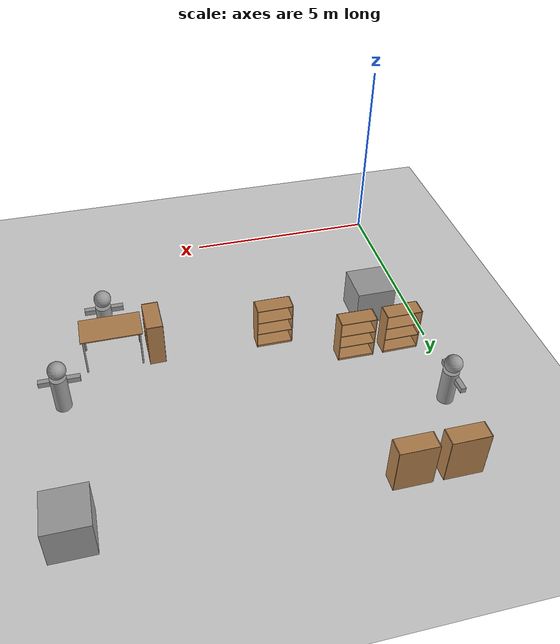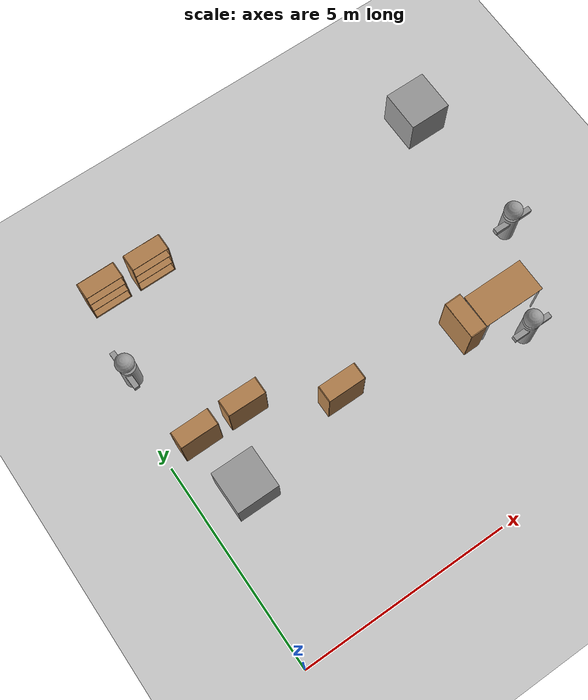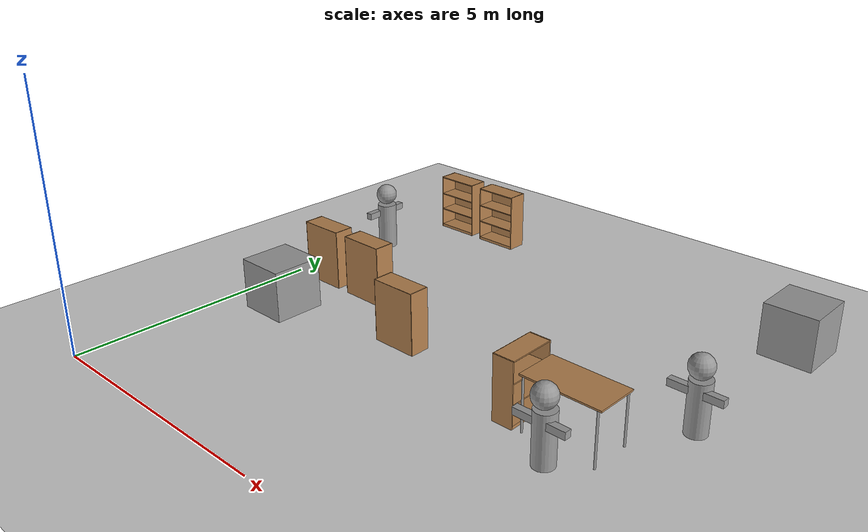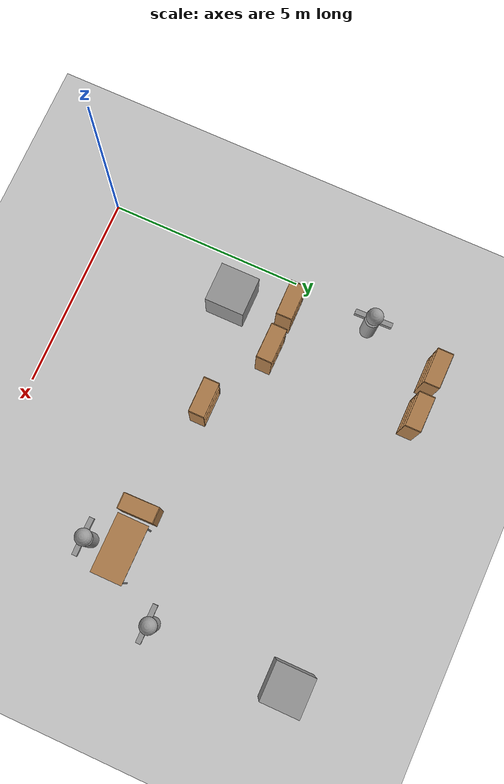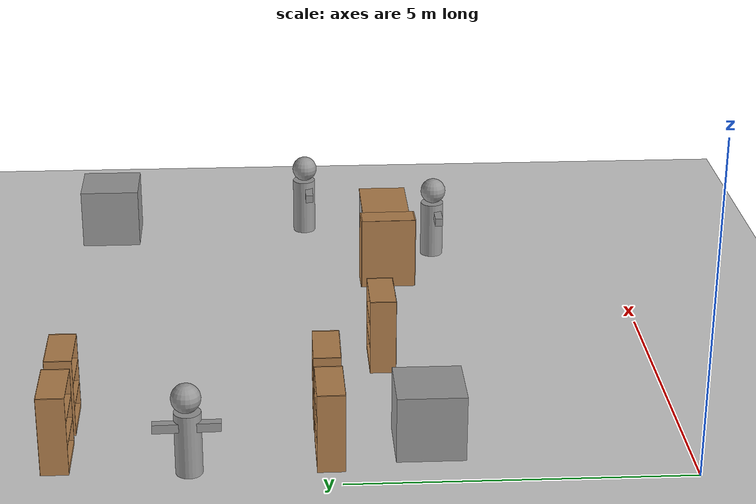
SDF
<sdf version="1.7">
 <world name="default">
  <model name="ground_plane">
   <static>1</static>
   <link name="link">
    <collision name="collision">
     <geometry><plane><normal>0 0 1</normal><size>100 100</size></plane></geometry>
     <surface><friction><ode><mu>100</mu><mu2>50</mu2></ode></friction></surface>
    </collision>
    <visual name="visual">
     <cast_shadows>0</cast_shadows>
     <geometry><plane><normal>0 0 1</normal><size>100 100</size></plane></geometry>
     <material>
      <script><uri>file://media/materials/scripts/gazebo.material</uri><name>Gazebo/Grey</name></script>
     </material>
    </visual>
   </link>
  </model>
  <model name="table">
   <static>1</static>
   <link name="link">
    <collision name="surface">
     <pose>0 0 1 0 -0 0</pose>
     <geometry><box><size>1.5 0.8 0.03</size></box></geometry>
     <surface><friction><ode><mu>0.6</mu><mu2>0.6</mu2></ode></friction></surface>
    </collision>
    <visual name="visual1">
     <pose>0 0 1 0 -0 0</pose>
     <geometry><box><size>1.5 0.8 0.03</size></box></geometry>
     <material>
      <script><uri>file://media/materials/scripts/gazebo.material</uri><name>Gazebo/Wood</name></script>
     </material>
    </visual>
    <collision name="front_left_leg">
     <pose>0.68 0.38 0.5 0 -0 0</pose>
     <geometry><cylinder><radius>0.02</radius><length>1</length></cylinder></geometry>
    </collision>
    <visual name="front_left_leg">
     <pose>0.68 0.38 0.5 0 -0 0</pose>
     <geometry><cylinder><radius>0.02</radius><length>1</length></cylinder></geometry>
     <material>
      <script><uri>file://media/materials/scripts/gazebo.material</uri><name>Gazebo/Grey</name></script>
     </material>
    </visual>
    <collision name="front_right_leg">
     <pose>0.68 -0.38 0.5 0 -0 0</pose>
     <geometry><cylinder><radius>0.02</radius><length>1</length></cylinder></geometry>
    </collision>
    <visual name="front_right_leg">
     <pose>0.68 -0.38 0.5 0 -0 0</pose>
     <geometry><cylinder><radius>0.02</radius><length>1</length></cylinder></geometry>
     <material>
      <script><uri>file://media/materials/scripts/gazebo.material</uri><name>Gazebo/Grey</name></script>
     </material>
    </visual>
    <collision name="back_right_leg">
     <pose>-0.68 -0.38 0.5 0 -0 0</pose>
     <geometry><cylinder><radius>0.02</radius><length>1</length></cylinder></geometry>
    </collision>
    <visual name="back_right_leg">
     <pose>-0.68 -0.38 0.5 0 -0 0</pose>
     <geometry><cylinder><radius>0.02</radius><length>1</length></cylinder></geometry>
     <material>
      <script><uri>file://media/materials/scripts/gazebo.material</uri><name>Gazebo/Grey</name></script>
     </material>
    </visual>
    <collision name="back_left_leg">
     <pose>-0.68 0.38 0.5 0 -0 0</pose>
     <geometry><cylinder><radius>0.02</radius><length>1</length></cylinder></geometry>
    </collision>
    <visual name="back_left_leg">
     <pose>-0.68 0.38 0.5 0 -0 0</pose>
     <geometry><cylinder><radius>0.02</radius><length>1</length></cylinder></geometry>
     <material>
      <script><uri>file://media/materials/scripts/gazebo.material</uri><name>Gazebo/Grey</name></script>
     </material>
    </visual>
   </link>
   <pose>7.86708 3.91475 0 0 -0 0</pose>
  </model>
  <model name="human">
   <link name="link_0">
    <inertial>
     <mass>0.142839</mass>
     <inertia>
      <ixx>0.0121475</ixx>
      <ixy>0</ixy>
      <ixz>0</ixz>
      <iyy>0.0121475</iyy>
      <iyz>0</iyz>
      <izz>0.00267643</izz>
     </inertia>
    </inertial>
    <pose>0.008516 0.031929 -0.329122 0 -0 0</pose>
    <visual name="visual">
     <geometry><cylinder><radius>0.193584</radius><length>0.95294</length></cylinder></geometry>
     <material>
      <lighting>1</lighting>
      <script><uri>file://media/materials/scripts/gazebo.material</uri><name>Gazebo/Grey</name></script>
      <shader type="pixel"/>
     </material>
    </visual>
    <collision name="collision">
     <geometry><cylinder><radius>0.193584</radius><length>0.95294</length></cylinder></geometry>
     <surface>
      <friction>
       <ode><mu>1</mu><mu2>1</mu2><fdir1>0 0 0</fdir1><slip1>0</slip1><slip2>0</slip2></ode>
       <torsional>
        <coefficient>1</coefficient>
        <patch_radius>0</patch_radius>
        <surface_radius>0</surface_radius>
        <use_patch_radius>1</use_patch_radius>
        <ode><slip>0</slip></ode>
       </torsional>
      </friction>
      <bounce><restitution_coefficient>0</restitution_coefficient><threshold>1e+06</threshold></bounce>
      <contact>
       <collide_without_contact>0</collide_without_contact>
       <collide_without_contact_bitmask>1</collide_without_contact_bitmask>
       <collide_bitmask>1</collide_bitmask>
       <ode>
        <soft_cfm>0</soft_cfm>
        <soft_erp>0.2</soft_erp>
        <kp>1e+13</kp>
        <kd>1</kd>
        <max_vel>0.01</max_vel>
        <min_depth>0</min_depth>
       </ode>
       <bullet>
        <split_impulse>1</split_impulse>
        <split_impulse_penetration_threshold>-0.01</split_impulse_penetration_threshold>
        <soft_cfm>0</soft_cfm>
        <soft_erp>0.2</soft_erp>
        <kp>1e+13</kp>
        <kd>1</kd>
       </bullet>
      </contact>
     </surface>
    </collision>
   </link>
   <link name="link_1">
    <inertial>
     <mass>0.0778712</mass>
     <inertia>
      <ixx>0.00142002</ixx>
      <ixy>0</ixy>
      <ixz>0</ixz>
      <iyy>0.00142002</iyy>
      <iyz>0</iyz>
      <izz>0.00142002</izz>
     </inertia>
    </inertial>
    <pose>-0.003621 0.018816 0.365537 0 -0 0</pose>
    <visual name="visual">
     <geometry><sphere><radius>0.213515</radius></sphere></geometry>
     <material>
      <lighting>1</lighting>
      <script><uri>file://media/materials/scripts/gazebo.material</uri><name>Gazebo/Grey</name></script>
      <shader type="pixel"/>
     </material>
    </visual>
    <collision name="collision">
     <geometry><sphere><radius>0.213515</radius></sphere></geometry>
     <surface>
      <friction>
       <ode><mu>1</mu><mu2>1</mu2><fdir1>0 0 0</fdir1><slip1>0</slip1><slip2>0</slip2></ode>
       <torsional>
        <coefficient>1</coefficient>
        <patch_radius>0</patch_radius>
        <surface_radius>0</surface_radius>
        <use_patch_radius>1</use_patch_radius>
        <ode><slip>0</slip></ode>
       </torsional>
      </friction>
      <bounce><restitution_coefficient>0</restitution_coefficient><threshold>1e+06</threshold></bounce>
      <contact>
       <collide_without_contact>0</collide_without_contact>
       <collide_without_contact_bitmask>1</collide_without_contact_bitmask>
       <collide_bitmask>1</collide_bitmask>
       <ode>
        <soft_cfm>0</soft_cfm>
        <soft_erp>0.2</soft_erp>
        <kp>1e+13</kp>
        <kd>1</kd>
        <max_vel>0.01</max_vel>
        <min_depth>0</min_depth>
       </ode>
       <bullet>
        <split_impulse>1</split_impulse>
        <split_impulse_penetration_threshold>-0.01</split_impulse_penetration_threshold>
        <soft_cfm>0</soft_cfm>
        <soft_erp>0.2</soft_erp>
        <kp>1e+13</kp>
        <kd>1</kd>
       </bullet>
      </contact>
     </surface>
    </collision>
   </link>
   <link name="link_2">
    <inertial>
     <mass>0.0161853</mass>
     <inertia>
      <ixx>4.54901e-05</ixx>
      <ixy>0</ixy>
      <ixz>0</ixz>
      <iyy>0.00126685</iyy>
      <iyz>0</iyz>
      <izz>0.00126565</izz>
     </inertia>
    </inertial>
    <pose>-0.004892 -0.050751 -0.036416 0 -0 0</pose>
    <visual name="visual">
     <geometry><box><size>0.960182 0.128141 0.131555</size></box></geometry>
     <material>
      <lighting>1</lighting>
      <script><uri>file://media/materials/scripts/gazebo.material</uri><name>Gazebo/Grey</name></script>
      <shader type="pixel"/>
     </material>
    </visual>
    <collision name="collision">
     <geometry><box><size>0.960182 0.128141 0.131555</size></box></geometry>
     <surface>
      <friction>
       <ode><mu>1</mu><mu2>1</mu2><fdir1>0 0 0</fdir1><slip1>0</slip1><slip2>0</slip2></ode>
       <torsional>
        <coefficient>1</coefficient>
        <patch_radius>0</patch_radius>
        <surface_radius>0</surface_radius>
        <use_patch_radius>1</use_patch_radius>
        <ode><slip>0</slip></ode>
       </torsional>
      </friction>
      <bounce><restitution_coefficient>0</restitution_coefficient><threshold>1e+06</threshold></bounce>
      <contact>
       <collide_without_contact>0</collide_without_contact>
       <collide_without_contact_bitmask>1</collide_without_contact_bitmask>
       <collide_bitmask>1</collide_bitmask>
       <ode>
        <soft_cfm>0</soft_cfm>
        <soft_erp>0.2</soft_erp>
        <kp>1e+13</kp>
        <kd>1</kd>
        <max_vel>0.01</max_vel>
        <min_depth>0</min_depth>
       </ode>
       <bullet>
        <split_impulse>1</split_impulse>
        <split_impulse_penetration_threshold>-0.01</split_impulse_penetration_threshold>
        <soft_cfm>0</soft_cfm>
        <soft_erp>0.2</soft_erp>
        <kp>1e+13</kp>
        <kd>1</kd>
       </bullet>
      </contact>
     </surface>
    </collision>
   </link>
   <static>1</static>
   <pose>7.96354 3.04249 0.841957 0 -0 0</pose>
  </model>
  <model name="unit_box">
   <pose>1.09139 3.7176 0.499995 1e-05 -0 0</pose>
   <link name="link">
    <inertial>
     <mass>1</mass>
     <inertia>
      <ixx>0.166667</ixx>
      <ixy>0</ixy>
      <ixz>0</ixz>
      <iyy>0.166667</iyy>
      <iyz>0</iyz>
      <izz>0.166667</izz>
     </inertia>
    </inertial>
    <collision name="collision"><geometry><box><size>1 1 1</size></box></geometry></collision>
    <visual name="visual">
     <geometry><box><size>1 1 1</size></box></geometry>
     <material>
      <script><name>Gazebo/Grey</name><uri>file://media/materials/scripts/gazebo.material</uri></script>
     </material>
    </visual>
   </link>
  </model>
  <model name="bookshelf">
   <static>1</static>
   <link name="link">
    <inertial><mass>1</mass></inertial>
    <collision name="back">
     <pose>0 0.005 0.6 0 -0 0</pose>
     <geometry><box><size>0.9 0.01 1.2</size></box></geometry>
    </collision>
    <visual name="visual1">
     <pose>0 0.005 0.6 0 -0 0</pose>
     <geometry><box><size>0.9 0.01 1.2</size></box></geometry>
     <material>
      <script><uri>file://media/materials/scripts/gazebo.material</uri><name>Gazebo/Wood</name></script>
     </material>
    </visual>
    <collision name="left_side">
     <pose>0.45 -0.195 0.6 0 -0 0</pose>
     <geometry><box><size>0.02 0.4 1.2</size></box></geometry>
    </collision>
    <visual name="visual2">
     <pose>0.45 -0.195 0.6 0 -0 0</pose>
     <geometry><box><size>0.02 0.4 1.2</size></box></geometry>
     <material>
      <script><uri>file://media/materials/scripts/gazebo.material</uri><name>Gazebo/Wood</name></script>
     </material>
    </visual>
    <collision name="right_side">
     <pose>-0.45 -0.195 0.6 0 -0 0</pose>
     <geometry><box><size>0.02 0.4 1.2</size></box></geometry>
    </collision>
    <visual name="visual3">
     <pose>-0.45 -0.195 0.6 0 -0 0</pose>
     <geometry><box><size>0.02 0.4 1.2</size></box></geometry>
     <material>
      <script><uri>file://media/materials/scripts/gazebo.material</uri><name>Gazebo/Wood</name></script>
     </material>
    </visual>
    <collision name="bottom">
     <pose>0 -0.195 0.03 0 -0 0</pose>
     <geometry><box><size>0.88 0.4 0.06</size></box></geometry>
    </collision>
    <visual name="visual4">
     <pose>0 -0.195 0.03 0 -0 0</pose>
     <geometry><box><size>0.88 0.4 0.06</size></box></geometry>
     <material>
      <script><uri>file://media/materials/scripts/gazebo.material</uri><name>Gazebo/Wood</name></script>
     </material>
    </visual>
    <collision name="top">
     <pose>0 -0.195 1.19 0 -0 0</pose>
     <geometry><box><size>0.88 0.4 0.02</size></box></geometry>
    </collision>
    <visual name="visual5">
     <pose>0 -0.195 1.19 0 -0 0</pose>
     <geometry><box><size>0.88 0.4 0.02</size></box></geometry>
     <material>
      <script><uri>file://media/materials/scripts/gazebo.material</uri><name>Gazebo/Wood</name></script>
     </material>
    </visual>
    <collision name="low_shelf">
     <pose>0 -0.195 0.43 0 -0 0</pose>
     <geometry><box><size>0.88 0.4 0.02</size></box></geometry>
    </collision>
    <visual name="visual6">
     <pose>0 -0.195 0.43 0 -0 0</pose>
     <geometry><box><size>0.88 0.4 0.02</size></box></geometry>
     <material>
      <script><uri>file://media/materials/scripts/gazebo.material</uri><name>Gazebo/Wood</name></script>
     </material>
    </visual>
    <collision name="high_shelf">
     <pose>0 -0.195 0.8 0 -0 0</pose>
     <geometry><box><size>0.88 0.4 0.02</size></box></geometry>
    </collision>
    <visual name="visual7">
     <pose>0 -0.195 0.8 0 -0 0</pose>
     <geometry><box><size>0.88 0.4 0.02</size></box></geometry>
     <material>
      <script><uri>file://media/materials/scripts/gazebo.material</uri><name>Gazebo/Wood</name></script>
     </material>
    </visual>
   </link>
   <pose>0.921021 9.20247 0 0 -0 0</pose>
  </model>
  <model name="bookshelf_0">
   <static>1</static>
   <link name="link">
    <inertial><mass>1</mass></inertial>
    <collision name="back">
     <pose>0 0.005 0.6 0 -0 0</pose>
     <geometry><box><size>0.9 0.01 1.2</size></box></geometry>
    </collision>
    <visual name="visual1">
     <pose>0 0.005 0.6 0 -0 0</pose>
     <geometry><box><size>0.9 0.01 1.2</size></box></geometry>
     <material>
      <script><uri>file://media/materials/scripts/gazebo.material</uri><name>Gazebo/Wood</name></script>
     </material>
    </visual>
    <collision name="left_side">
     <pose>0.45 -0.195 0.6 0 -0 0</pose>
     <geometry><box><size>0.02 0.4 1.2</size></box></geometry>
    </collision>
    <visual name="visual2">
     <pose>0.45 -0.195 0.6 0 -0 0</pose>
     <geometry><box><size>0.02 0.4 1.2</size></box></geometry>
     <material>
      <script><uri>file://media/materials/scripts/gazebo.material</uri><name>Gazebo/Wood</name></script>
     </material>
    </visual>
    <collision name="right_side">
     <pose>-0.45 -0.195 0.6 0 -0 0</pose>
     <geometry><box><size>0.02 0.4 1.2</size></box></geometry>
    </collision>
    <visual name="visual3">
     <pose>-0.45 -0.195 0.6 0 -0 0</pose>
     <geometry><box><size>0.02 0.4 1.2</size></box></geometry>
     <material>
      <script><uri>file://media/materials/scripts/gazebo.material</uri><name>Gazebo/Wood</name></script>
     </material>
    </visual>
    <collision name="bottom">
     <pose>0 -0.195 0.03 0 -0 0</pose>
     <geometry><box><size>0.88 0.4 0.06</size></box></geometry>
    </collision>
    <visual name="visual4">
     <pose>0 -0.195 0.03 0 -0 0</pose>
     <geometry><box><size>0.88 0.4 0.06</size></box></geometry>
     <material>
      <script><uri>file://media/materials/scripts/gazebo.material</uri><name>Gazebo/Wood</name></script>
     </material>
    </visual>
    <collision name="top">
     <pose>0 -0.195 1.19 0 -0 0</pose>
     <geometry><box><size>0.88 0.4 0.02</size></box></geometry>
    </collision>
    <visual name="visual5">
     <pose>0 -0.195 1.19 0 -0 0</pose>
     <geometry><box><size>0.88 0.4 0.02</size></box></geometry>
     <material>
      <script><uri>file://media/materials/scripts/gazebo.material</uri><name>Gazebo/Wood</name></script>
     </material>
    </visual>
    <collision name="low_shelf">
     <pose>0 -0.195 0.43 0 -0 0</pose>
     <geometry><box><size>0.88 0.4 0.02</size></box></geometry>
    </collision>
    <visual name="visual6">
     <pose>0 -0.195 0.43 0 -0 0</pose>
     <geometry><box><size>0.88 0.4 0.02</size></box></geometry>
     <material>
      <script><uri>file://media/materials/scripts/gazebo.material</uri><name>Gazebo/Wood</name></script>
     </material>
    </visual>
    <collision name="high_shelf">
     <pose>0 -0.195 0.8 0 -0 0</pose>
     <geometry><box><size>0.88 0.4 0.02</size></box></geometry>
    </collision>
    <visual name="visual7">
     <pose>0 -0.195 0.8 0 -0 0</pose>
     <geometry><box><size>0.88 0.4 0.02</size></box></geometry>
     <material>
      <script><uri>file://media/materials/scripts/gazebo.material</uri><name>Gazebo/Wood</name></script>
     </material>
    </visual>
   </link>
   <pose>2.06987 9.19569 0 0 -0 0</pose>
  </model>
  <model name="bookshelf_1">
   <static>1</static>
   <link name="link">
    <inertial><mass>1</mass></inertial>
    <collision name="back">
     <pose>0 0.005 0.6 0 -0 0</pose>
     <geometry><box><size>0.9 0.01 1.2</size></box></geometry>
    </collision>
    <visual name="visual1">
     <pose>0 0.005 0.6 0 -0 0</pose>
     <geometry><box><size>0.9 0.01 1.2</size></box></geometry>
     <material>
      <script><uri>file://media/materials/scripts/gazebo.material</uri><name>Gazebo/Wood</name></script>
     </material>
    </visual>
    <collision name="left_side">
     <pose>0.45 -0.195 0.6 0 -0 0</pose>
     <geometry><box><size>0.02 0.4 1.2</size></box></geometry>
    </collision>
    <visual name="visual2">
     <pose>0.45 -0.195 0.6 0 -0 0</pose>
     <geometry><box><size>0.02 0.4 1.2</size></box></geometry>
     <material>
      <script><uri>file://media/materials/scripts/gazebo.material</uri><name>Gazebo/Wood</name></script>
     </material>
    </visual>
    <collision name="right_side">
     <pose>-0.45 -0.195 0.6 0 -0 0</pose>
     <geometry><box><size>0.02 0.4 1.2</size></box></geometry>
    </collision>
    <visual name="visual3">
     <pose>-0.45 -0.195 0.6 0 -0 0</pose>
     <geometry><box><size>0.02 0.4 1.2</size></box></geometry>
     <material>
      <script><uri>file://media/materials/scripts/gazebo.material</uri><name>Gazebo/Wood</name></script>
     </material>
    </visual>
    <collision name="bottom">
     <pose>0 -0.195 0.03 0 -0 0</pose>
     <geometry><box><size>0.88 0.4 0.06</size></box></geometry>
    </collision>
    <visual name="visual4">
     <pose>0 -0.195 0.03 0 -0 0</pose>
     <geometry><box><size>0.88 0.4 0.06</size></box></geometry>
     <material>
      <script><uri>file://media/materials/scripts/gazebo.material</uri><name>Gazebo/Wood</name></script>
     </material>
    </visual>
    <collision name="top">
     <pose>0 -0.195 1.19 0 -0 0</pose>
     <geometry><box><size>0.88 0.4 0.02</size></box></geometry>
    </collision>
    <visual name="visual5">
     <pose>0 -0.195 1.19 0 -0 0</pose>
     <geometry><box><size>0.88 0.4 0.02</size></box></geometry>
     <material>
      <script><uri>file://media/materials/scripts/gazebo.material</uri><name>Gazebo/Wood</name></script>
     </material>
    </visual>
    <collision name="low_shelf">
     <pose>0 -0.195 0.43 0 -0 0</pose>
     <geometry><box><size>0.88 0.4 0.02</size></box></geometry>
    </collision>
    <visual name="visual6">
     <pose>0 -0.195 0.43 0 -0 0</pose>
     <geometry><box><size>0.88 0.4 0.02</size></box></geometry>
     <material>
      <script><uri>file://media/materials/scripts/gazebo.material</uri><name>Gazebo/Wood</name></script>
     </material>
    </visual>
    <collision name="high_shelf">
     <pose>0 -0.195 0.8 0 -0 0</pose>
     <geometry><box><size>0.88 0.4 0.02</size></box></geometry>
    </collision>
    <visual name="visual7">
     <pose>0 -0.195 0.8 0 -0 0</pose>
     <geometry><box><size>0.88 0.4 0.02</size></box></geometry>
     <material>
      <script><uri>file://media/materials/scripts/gazebo.material</uri><name>Gazebo/Wood</name></script>
     </material>
    </visual>
   </link>
   <pose>1.98594 4.95281 0 0 -0 3.13272</pose>
  </model>
  <model name="bookshelf_2">
   <static>1</static>
   <link name="link">
    <inertial><mass>1</mass></inertial>
    <collision name="back">
     <pose>0 0.005 0.6 0 -0 0</pose>
     <geometry><box><size>0.9 0.01 1.2</size></box></geometry>
    </collision>
    <visual name="visual1">
     <pose>0 0.005 0.6 0 -0 0</pose>
     <geometry><box><size>0.9 0.01 1.2</size></box></geometry>
     <material>
      <script><uri>file://media/materials/scripts/gazebo.material</uri><name>Gazebo/Wood</name></script>
     </material>
    </visual>
    <collision name="left_side">
     <pose>0.45 -0.195 0.6 0 -0 0</pose>
     <geometry><box><size>0.02 0.4 1.2</size></box></geometry>
    </collision>
    <visual name="visual2">
     <pose>0.45 -0.195 0.6 0 -0 0</pose>
     <geometry><box><size>0.02 0.4 1.2</size></box></geometry>
     <material>
      <script><uri>file://media/materials/scripts/gazebo.material</uri><name>Gazebo/Wood</name></script>
     </material>
    </visual>
    <collision name="right_side">
     <pose>-0.45 -0.195 0.6 0 -0 0</pose>
     <geometry><box><size>0.02 0.4 1.2</size></box></geometry>
    </collision>
    <visual name="visual3">
     <pose>-0.45 -0.195 0.6 0 -0 0</pose>
     <geometry><box><size>0.02 0.4 1.2</size></box></geometry>
     <material>
      <script><uri>file://media/materials/scripts/gazebo.material</uri><name>Gazebo/Wood</name></script>
     </material>
    </visual>
    <collision name="bottom">
     <pose>0 -0.195 0.03 0 -0 0</pose>
     <geometry><box><size>0.88 0.4 0.06</size></box></geometry>
    </collision>
    <visual name="visual4">
     <pose>0 -0.195 0.03 0 -0 0</pose>
     <geometry><box><size>0.88 0.4 0.06</size></box></geometry>
     <material>
      <script><uri>file://media/materials/scripts/gazebo.material</uri><name>Gazebo/Wood</name></script>
     </material>
    </visual>
    <collision name="top">
     <pose>0 -0.195 1.19 0 -0 0</pose>
     <geometry><box><size>0.88 0.4 0.02</size></box></geometry>
    </collision>
    <visual name="visual5">
     <pose>0 -0.195 1.19 0 -0 0</pose>
     <geometry><box><size>0.88 0.4 0.02</size></box></geometry>
     <material>
      <script><uri>file://media/materials/scripts/gazebo.material</uri><name>Gazebo/Wood</name></script>
     </material>
    </visual>
    <collision name="low_shelf">
     <pose>0 -0.195 0.43 0 -0 0</pose>
     <geometry><box><size>0.88 0.4 0.02</size></box></geometry>
    </collision>
    <visual name="visual6">
     <pose>0 -0.195 0.43 0 -0 0</pose>
     <geometry><box><size>0.88 0.4 0.02</size></box></geometry>
     <material>
      <script><uri>file://media/materials/scripts/gazebo.material</uri><name>Gazebo/Wood</name></script>
     </material>
    </visual>
    <collision name="high_shelf">
     <pose>0 -0.195 0.8 0 -0 0</pose>
     <geometry><box><size>0.88 0.4 0.02</size></box></geometry>
    </collision>
    <visual name="visual7">
     <pose>0 -0.195 0.8 0 -0 0</pose>
     <geometry><box><size>0.88 0.4 0.02</size></box></geometry>
     <material>
      <script><uri>file://media/materials/scripts/gazebo.material</uri><name>Gazebo/Wood</name></script>
     </material>
    </visual>
   </link>
   <pose>0.818929 4.94965 0 0 0 -3.13432</pose>
  </model>
  <model name="unit_box_1">
   <pose>9.15488 8.73051 0.499995 0 1e-05 0.000796</pose>
   <link name="link">
    <inertial>
     <mass>1</mass>
     <inertia>
      <ixx>0.166667</ixx>
      <ixy>0</ixy>
      <ixz>0</ixz>
      <iyy>0.166667</iyy>
      <iyz>0</iyz>
      <izz>0.166667</izz>
     </inertia>
    </inertial>
    <collision name="collision"><geometry><box><size>1 1 1</size></box></geometry></collision>
    <visual name="visual">
     <geometry><box><size>1 1 1</size></box></geometry>
     <material>
      <script><name>Gazebo/Grey</name><uri>file://media/materials/scripts/gazebo.material</uri></script>
     </material>
    </visual>
   </link>
  </model>
  <model name="human_clone">
   <link name="link_0">
    <inertial>
     <mass>0.142839</mass>
     <inertia>
      <ixx>0.0121475</ixx>
      <ixy>0</ixy>
      <ixz>0</ixz>
      <iyy>0.0121475</iyy>
      <iyz>0</iyz>
      <izz>0.00267643</izz>
     </inertia>
    </inertial>
    <pose>0.008516 0.031929 -0.329122 0 -0 0</pose>
    <visual name="visual">
     <geometry><cylinder><radius>0.193584</radius><length>0.95294</length></cylinder></geometry>
     <material>
      <lighting>1</lighting>
      <script><uri>file://media/materials/scripts/gazebo.material</uri><name>Gazebo/Grey</name></script>
      <shader type="pixel"/>
     </material>
    </visual>
    <collision name="collision">
     <geometry><cylinder><radius>0.193584</radius><length>0.95294</length></cylinder></geometry>
     <surface>
      <friction>
       <ode><mu>1</mu><mu2>1</mu2><fdir1>0 0 0</fdir1><slip1>0</slip1><slip2>0</slip2></ode>
       <torsional>
        <coefficient>1</coefficient>
        <patch_radius>0</patch_radius>
        <surface_radius>0</surface_radius>
        <use_patch_radius>1</use_patch_radius>
        <ode><slip>0</slip></ode>
       </torsional>
      </friction>
      <bounce><restitution_coefficient>0</restitution_coefficient><threshold>1e+06</threshold></bounce>
      <contact>
       <collide_without_contact>0</collide_without_contact>
       <collide_without_contact_bitmask>1</collide_without_contact_bitmask>
       <collide_bitmask>1</collide_bitmask>
       <ode>
        <soft_cfm>0</soft_cfm>
        <soft_erp>0.2</soft_erp>
        <kp>1e+13</kp>
        <kd>1</kd>
        <max_vel>0.01</max_vel>
        <min_depth>0</min_depth>
       </ode>
       <bullet>
        <split_impulse>1</split_impulse>
        <split_impulse_penetration_threshold>-0.01</split_impulse_penetration_threshold>
        <soft_cfm>0</soft_cfm>
        <soft_erp>0.2</soft_erp>
        <kp>1e+13</kp>
        <kd>1</kd>
       </bullet>
      </contact>
     </surface>
    </collision>
   </link>
   <link name="link_1">
    <inertial>
     <mass>0.0778712</mass>
     <inertia>
      <ixx>0.00142002</ixx>
      <ixy>0</ixy>
      <ixz>0</ixz>
      <iyy>0.00142002</iyy>
      <iyz>0</iyz>
      <izz>0.00142002</izz>
     </inertia>
    </inertial>
    <pose>-0.003621 0.018816 0.365537 0 -0 0</pose>
    <visual name="visual">
     <geometry><sphere><radius>0.213515</radius></sphere></geometry>
     <material>
      <lighting>1</lighting>
      <script><uri>file://media/materials/scripts/gazebo.material</uri><name>Gazebo/Grey</name></script>
      <shader type="pixel"/>
     </material>
    </visual>
    <collision name="collision">
     <geometry><sphere><radius>0.213515</radius></sphere></geometry>
     <surface>
      <friction>
       <ode><mu>1</mu><mu2>1</mu2><fdir1>0 0 0</fdir1><slip1>0</slip1><slip2>0</slip2></ode>
       <torsional>
        <coefficient>1</coefficient>
        <patch_radius>0</patch_radius>
        <surface_radius>0</surface_radius>
        <use_patch_radius>1</use_patch_radius>
        <ode><slip>0</slip></ode>
       </torsional>
      </friction>
      <bounce><restitution_coefficient>0</restitution_coefficient><threshold>1e+06</threshold></bounce>
      <contact>
       <collide_without_contact>0</collide_without_contact>
       <collide_without_contact_bitmask>1</collide_without_contact_bitmask>
       <collide_bitmask>1</collide_bitmask>
       <ode>
        <soft_cfm>0</soft_cfm>
        <soft_erp>0.2</soft_erp>
        <kp>1e+13</kp>
        <kd>1</kd>
        <max_vel>0.01</max_vel>
        <min_depth>0</min_depth>
       </ode>
       <bullet>
        <split_impulse>1</split_impulse>
        <split_impulse_penetration_threshold>-0.01</split_impulse_penetration_threshold>
        <soft_cfm>0</soft_cfm>
        <soft_erp>0.2</soft_erp>
        <kp>1e+13</kp>
        <kd>1</kd>
       </bullet>
      </contact>
     </surface>
    </collision>
   </link>
   <link name="link_2">
    <inertial>
     <mass>0.0161853</mass>
     <inertia>
      <ixx>4.54901e-05</ixx>
      <ixy>0</ixy>
      <ixz>0</ixz>
      <iyy>0.00126685</iyy>
      <iyz>0</iyz>
      <izz>0.00126565</izz>
     </inertia>
    </inertial>
    <pose>-0.004892 -0.050751 -0.036416 0 -0 0</pose>
    <visual name="visual">
     <geometry><box><size>0.960182 0.128141 0.131555</size></box></geometry>
     <material>
      <lighting>1</lighting>
      <script><uri>file://media/materials/scripts/gazebo.material</uri><name>Gazebo/Grey</name></script>
      <shader type="pixel"/>
     </material>
    </visual>
    <collision name="collision">
     <geometry><box><size>0.960182 0.128141 0.131555</size></box></geometry>
     <surface>
      <friction>
       <ode><mu>1</mu><mu2>1</mu2><fdir1>0 0 0</fdir1><slip1>0</slip1><slip2>0</slip2></ode>
       <torsional>
        <coefficient>1</coefficient>
        <patch_radius>0</patch_radius>
        <surface_radius>0</surface_radius>
        <use_patch_radius>1</use_patch_radius>
        <ode><slip>0</slip></ode>
       </torsional>
      </friction>
      <bounce><restitution_coefficient>0</restitution_coefficient><threshold>1e+06</threshold></bounce>
      <contact>
       <collide_without_contact>0</collide_without_contact>
       <collide_without_contact_bitmask>1</collide_without_contact_bitmask>
       <collide_bitmask>1</collide_bitmask>
       <ode>
        <soft_cfm>0</soft_cfm>
        <soft_erp>0.2</soft_erp>
        <kp>1e+13</kp>
        <kd>1</kd>
        <max_vel>0.01</max_vel>
        <min_depth>0</min_depth>
       </ode>
       <bullet>
        <split_impulse>1</split_impulse>
        <split_impulse_penetration_threshold>-0.01</split_impulse_penetration_threshold>
        <soft_cfm>0</soft_cfm>
        <soft_erp>0.2</soft_erp>
        <kp>1e+13</kp>
        <kd>1</kd>
       </bullet>
      </contact>
     </surface>
    </collision>
   </link>
   <static>1</static>
   <pose>9.15887 5.24562 0.841957 0 -0 0</pose>
  </model>
  <model name="human_clone_0">
   <link name="link_0">
    <inertial>
     <mass>0.142839</mass>
     <inertia>
      <ixx>0.0121475</ixx>
      <ixy>0</ixy>
      <ixz>0</ixz>
      <iyy>0.0121475</iyy>
      <iyz>0</iyz>
      <izz>0.00267643</izz>
     </inertia>
    </inertial>
    <pose>0.008516 0.031929 -0.329122 0 -0 0</pose>
    <visual name="visual">
     <geometry><cylinder><radius>0.193584</radius><length>0.95294</length></cylinder></geometry>
     <material>
      <lighting>1</lighting>
      <script><uri>file://media/materials/scripts/gazebo.material</uri><name>Gazebo/Grey</name></script>
      <shader type="pixel"/>
     </material>
    </visual>
    <collision name="collision">
     <geometry><cylinder><radius>0.193584</radius><length>0.95294</length></cylinder></geometry>
     <surface>
      <friction>
       <ode><mu>1</mu><mu2>1</mu2><fdir1>0 0 0</fdir1><slip1>0</slip1><slip2>0</slip2></ode>
       <torsional>
        <coefficient>1</coefficient>
        <patch_radius>0</patch_radius>
        <surface_radius>0</surface_radius>
        <use_patch_radius>1</use_patch_radius>
        <ode><slip>0</slip></ode>
       </torsional>
      </friction>
      <bounce><restitution_coefficient>0</restitution_coefficient><threshold>1e+06</threshold></bounce>
      <contact>
       <collide_without_contact>0</collide_without_contact>
       <collide_without_contact_bitmask>1</collide_without_contact_bitmask>
       <collide_bitmask>1</collide_bitmask>
       <ode>
        <soft_cfm>0</soft_cfm>
        <soft_erp>0.2</soft_erp>
        <kp>1e+13</kp>
        <kd>1</kd>
        <max_vel>0.01</max_vel>
        <min_depth>0</min_depth>
       </ode>
       <bullet>
        <split_impulse>1</split_impulse>
        <split_impulse_penetration_threshold>-0.01</split_impulse_penetration_threshold>
        <soft_cfm>0</soft_cfm>
        <soft_erp>0.2</soft_erp>
        <kp>1e+13</kp>
        <kd>1</kd>
       </bullet>
      </contact>
     </surface>
    </collision>
   </link>
   <link name="link_1">
    <inertial>
     <mass>0.0778712</mass>
     <inertia>
      <ixx>0.00142002</ixx>
      <ixy>0</ixy>
      <ixz>0</ixz>
      <iyy>0.00142002</iyy>
      <iyz>0</iyz>
      <izz>0.00142002</izz>
     </inertia>
    </inertial>
    <pose>-0.003621 0.018816 0.365537 0 -0 0</pose>
    <visual name="visual">
     <geometry><sphere><radius>0.213515</radius></sphere></geometry>
     <material>
      <lighting>1</lighting>
      <script><uri>file://media/materials/scripts/gazebo.material</uri><name>Gazebo/Grey</name></script>
      <shader type="pixel"/>
     </material>
    </visual>
    <collision name="collision">
     <geometry><sphere><radius>0.213515</radius></sphere></geometry>
     <surface>
      <friction>
       <ode><mu>1</mu><mu2>1</mu2><fdir1>0 0 0</fdir1><slip1>0</slip1><slip2>0</slip2></ode>
       <torsional>
        <coefficient>1</coefficient>
        <patch_radius>0</patch_radius>
        <surface_radius>0</surface_radius>
        <use_patch_radius>1</use_patch_radius>
        <ode><slip>0</slip></ode>
       </torsional>
      </friction>
      <bounce><restitution_coefficient>0</restitution_coefficient><threshold>1e+06</threshold></bounce>
      <contact>
       <collide_without_contact>0</collide_without_contact>
       <collide_without_contact_bitmask>1</collide_without_contact_bitmask>
       <collide_bitmask>1</collide_bitmask>
       <ode>
        <soft_cfm>0</soft_cfm>
        <soft_erp>0.2</soft_erp>
        <kp>1e+13</kp>
        <kd>1</kd>
        <max_vel>0.01</max_vel>
        <min_depth>0</min_depth>
       </ode>
       <bullet>
        <split_impulse>1</split_impulse>
        <split_impulse_penetration_threshold>-0.01</split_impulse_penetration_threshold>
        <soft_cfm>0</soft_cfm>
        <soft_erp>0.2</soft_erp>
        <kp>1e+13</kp>
        <kd>1</kd>
       </bullet>
      </contact>
     </surface>
    </collision>
   </link>
   <link name="link_2">
    <inertial>
     <mass>0.0161853</mass>
     <inertia>
      <ixx>4.54901e-05</ixx>
      <ixy>0</ixy>
      <ixz>0</ixz>
      <iyy>0.00126685</iyy>
      <iyz>0</iyz>
      <izz>0.00126565</izz>
     </inertia>
    </inertial>
    <pose>-0.004892 -0.050751 -0.036416 0 -0 0</pose>
    <visual name="visual">
     <geometry><box><size>0.960182 0.128141 0.131555</size></box></geometry>
     <material>
      <lighting>1</lighting>
      <script><uri>file://media/materials/scripts/gazebo.material</uri><name>Gazebo/Grey</name></script>
      <shader type="pixel"/>
     </material>
    </visual>
    <collision name="collision">
     <geometry><box><size>0.960182 0.128141 0.131555</size></box></geometry>
     <surface>
      <friction>
       <ode><mu>1</mu><mu2>1</mu2><fdir1>0 0 0</fdir1><slip1>0</slip1><slip2>0</slip2></ode>
       <torsional>
        <coefficient>1</coefficient>
        <patch_radius>0</patch_radius>
        <surface_radius>0</surface_radius>
        <use_patch_radius>1</use_patch_radius>
        <ode><slip>0</slip></ode>
       </torsional>
      </friction>
      <bounce><restitution_coefficient>0</restitution_coefficient><threshold>1e+06</threshold></bounce>
      <contact>
       <collide_without_contact>0</collide_without_contact>
       <collide_without_contact_bitmask>1</collide_without_contact_bitmask>
       <collide_bitmask>1</collide_bitmask>
       <ode>
        <soft_cfm>0</soft_cfm>
        <soft_erp>0.2</soft_erp>
        <kp>1e+13</kp>
        <kd>1</kd>
        <max_vel>0.01</max_vel>
        <min_depth>0</min_depth>
       </ode>
       <bullet>
        <split_impulse>1</split_impulse>
        <split_impulse_penetration_threshold>-0.01</split_impulse_penetration_threshold>
        <soft_cfm>0</soft_cfm>
        <soft_erp>0.2</soft_erp>
        <kp>1e+13</kp>
        <kd>1</kd>
       </bullet>
      </contact>
     </surface>
    </collision>
   </link>
   <static>1</static>
   <pose>0.366397 7.13503 0.841957 0 0 -1.54363</pose>
  </model>
  <model name="bookshelf_4">
   <static>1</static>
   <link name="link">
    <inertial><mass>1</mass></inertial>
    <collision name="back">
     <pose>0 0.005 0.6 0 -0 0</pose>
     <geometry><box><size>0.9 0.01 1.2</size></box></geometry>
    </collision>
    <visual name="visual1">
     <pose>0 0.005 0.6 0 -0 0</pose>
     <geometry><box><size>0.9 0.01 1.2</size></box></geometry>
     <material>
      <script><uri>file://media/materials/scripts/gazebo.material</uri><name>Gazebo/Wood</name></script>
     </material>
    </visual>
    <collision name="left_side">
     <pose>0.45 -0.195 0.6 0 -0 0</pose>
     <geometry><box><size>0.02 0.4 1.2</size></box></geometry>
    </collision>
    <visual name="visual2">
     <pose>0.45 -0.195 0.6 0 -0 0</pose>
     <geometry><box><size>0.02 0.4 1.2</size></box></geometry>
     <material>
      <script><uri>file://media/materials/scripts/gazebo.material</uri><name>Gazebo/Wood</name></script>
     </material>
    </visual>
    <collision name="right_side">
     <pose>-0.45 -0.195 0.6 0 -0 0</pose>
     <geometry><box><size>0.02 0.4 1.2</size></box></geometry>
    </collision>
    <visual name="visual3">
     <pose>-0.45 -0.195 0.6 0 -0 0</pose>
     <geometry><box><size>0.02 0.4 1.2</size></box></geometry>
     <material>
      <script><uri>file://media/materials/scripts/gazebo.material</uri><name>Gazebo/Wood</name></script>
     </material>
    </visual>
    <collision name="bottom">
     <pose>0 -0.195 0.03 0 -0 0</pose>
     <geometry><box><size>0.88 0.4 0.06</size></box></geometry>
    </collision>
    <visual name="visual4">
     <pose>0 -0.195 0.03 0 -0 0</pose>
     <geometry><box><size>0.88 0.4 0.06</size></box></geometry>
     <material>
      <script><uri>file://media/materials/scripts/gazebo.material</uri><name>Gazebo/Wood</name></script>
     </material>
    </visual>
    <collision name="top">
     <pose>0 -0.195 1.19 0 -0 0</pose>
     <geometry><box><size>0.88 0.4 0.02</size></box></geometry>
    </collision>
    <visual name="visual5">
     <pose>0 -0.195 1.19 0 -0 0</pose>
     <geometry><box><size>0.88 0.4 0.02</size></box></geometry>
     <material>
      <script><uri>file://media/materials/scripts/gazebo.material</uri><name>Gazebo/Wood</name></script>
     </material>
    </visual>
    <collision name="low_shelf">
     <pose>0 -0.195 0.43 0 -0 0</pose>
     <geometry><box><size>0.88 0.4 0.02</size></box></geometry>
    </collision>
    <visual name="visual6">
     <pose>0 -0.195 0.43 0 -0 0</pose>
     <geometry><box><size>0.88 0.4 0.02</size></box></geometry>
     <material>
      <script><uri>file://media/materials/scripts/gazebo.material</uri><name>Gazebo/Wood</name></script>
     </material>
    </visual>
    <collision name="high_shelf">
     <pose>0 -0.195 0.8 0 -0 0</pose>
     <geometry><box><size>0.88 0.4 0.02</size></box></geometry>
    </collision>
    <visual name="visual7">
     <pose>0 -0.195 0.8 0 -0 0</pose>
     <geometry><box><size>0.88 0.4 0.02</size></box></geometry>
     <material>
      <script><uri>file://media/materials/scripts/gazebo.material</uri><name>Gazebo/Wood</name></script>
     </material>
    </visual>
   </link>
   <pose>3.84787 4.03012 0 0 0 -3.14006</pose>
  </model>
  <model name="bookshelf_5">
   <static>1</static>
   <link name="link">
    <inertial><mass>1</mass></inertial>
    <collision name="back">
     <pose>0 0.005 0.6 0 -0 0</pose>
     <geometry><box><size>0.9 0.01 1.2</size></box></geometry>
    </collision>
    <visual name="visual1">
     <pose>0 0.005 0.6 0 -0 0</pose>
     <geometry><box><size>0.9 0.01 1.2</size></box></geometry>
     <material>
      <script><uri>file://media/materials/scripts/gazebo.material</uri><name>Gazebo/Wood</name></script>
     </material>
    </visual>
    <collision name="left_side">
     <pose>0.45 -0.195 0.6 0 -0 0</pose>
     <geometry><box><size>0.02 0.4 1.2</size></box></geometry>
    </collision>
    <visual name="visual2">
     <pose>0.45 -0.195 0.6 0 -0 0</pose>
     <geometry><box><size>0.02 0.4 1.2</size></box></geometry>
     <material>
      <script><uri>file://media/materials/scripts/gazebo.material</uri><name>Gazebo/Wood</name></script>
     </material>
    </visual>
    <collision name="right_side">
     <pose>-0.45 -0.195 0.6 0 -0 0</pose>
     <geometry><box><size>0.02 0.4 1.2</size></box></geometry>
    </collision>
    <visual name="visual3">
     <pose>-0.45 -0.195 0.6 0 -0 0</pose>
     <geometry><box><size>0.02 0.4 1.2</size></box></geometry>
     <material>
      <script><uri>file://media/materials/scripts/gazebo.material</uri><name>Gazebo/Wood</name></script>
     </material>
    </visual>
    <collision name="bottom">
     <pose>0 -0.195 0.03 0 -0 0</pose>
     <geometry><box><size>0.88 0.4 0.06</size></box></geometry>
    </collision>
    <visual name="visual4">
     <pose>0 -0.195 0.03 0 -0 0</pose>
     <geometry><box><size>0.88 0.4 0.06</size></box></geometry>
     <material>
      <script><uri>file://media/materials/scripts/gazebo.material</uri><name>Gazebo/Wood</name></script>
     </material>
    </visual>
    <collision name="top">
     <pose>0 -0.195 1.19 0 -0 0</pose>
     <geometry><box><size>0.88 0.4 0.02</size></box></geometry>
    </collision>
    <visual name="visual5">
     <pose>0 -0.195 1.19 0 -0 0</pose>
     <geometry><box><size>0.88 0.4 0.02</size></box></geometry>
     <material>
      <script><uri>file://media/materials/scripts/gazebo.material</uri><name>Gazebo/Wood</name></script>
     </material>
    </visual>
    <collision name="low_shelf">
     <pose>0 -0.195 0.43 0 -0 0</pose>
     <geometry><box><size>0.88 0.4 0.02</size></box></geometry>
    </collision>
    <visual name="visual6">
     <pose>0 -0.195 0.43 0 -0 0</pose>
     <geometry><box><size>0.88 0.4 0.02</size></box></geometry>
     <material>
      <script><uri>file://media/materials/scripts/gazebo.material</uri><name>Gazebo/Wood</name></script>
     </material>
    </visual>
    <collision name="high_shelf">
     <pose>0 -0.195 0.8 0 -0 0</pose>
     <geometry><box><size>0.88 0.4 0.02</size></box></geometry>
    </collision>
    <visual name="visual7">
     <pose>0 -0.195 0.8 0 -0 0</pose>
     <geometry><box><size>0.88 0.4 0.02</size></box></geometry>
     <material>
      <script><uri>file://media/materials/scripts/gazebo.material</uri><name>Gazebo/Wood</name></script>
     </material>
    </visual>
   </link>
   <pose>6.6403 3.92329 0 0 -0 1.58647</pose>
  </model>
 </world>
</sdf>
